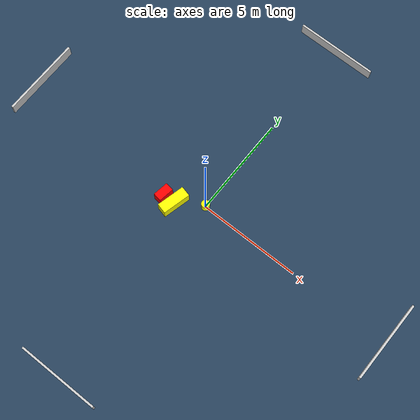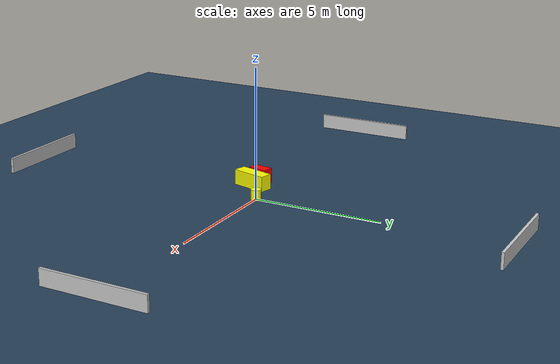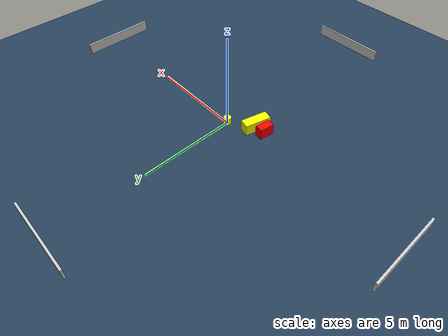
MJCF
<?xml version="1.0" ?>
<mujoco model="generated_environment">
  <option timestep="0.01" integrator="RK4" cone="elliptic"/>
  <default>
    <geom density="1"/>
  </default>
  <asset>
    <texture builtin="gradient" height="3072" name="skybox" rgb1="0.3 0.5 0.7" rgb2="0 0 0" type="skybox" width="512"/>
    <texture builtin="checker" height="300" name="groundplane" rgb1="0.2 0.3 0.4" rgb2="0.1 0.2 0.3" type="2d" width="300"/>
    <material name="groundplane" reflectance="0.2" texrepeat="5 5" texture="groundplane"/>
  </asset>
  <worldbody>
    <light dir="0 0 -1" directional="true" pos="0 0 1.5"/>
    <geom condim="3" friction="0.5 0.005 0.001" material="groundplane" name="floor" pos="0 0 0" size="0 0 0.05" type="plane"/>
    <body name="walls">
      <geom name="wall_1" condim="4" pos="-10.0 0.0 0.3" rgba="0.800000011920929 0.800000011920929 0.800000011920929 1.0" size="0.05 2.0 0.3" type="box"/>
      <geom name="wall_2" condim="4" pos="10.0 0.0 0.3" rgba="0.800000011920929 0.800000011920929 0.800000011920929 1.0" size="0.05 2.0 0.3" type="box"/>
      <geom name="wall_3" condim="4" pos="0.0 -10.0 0.3" rgba="0.800000011920929 0.800000011920929 0.800000011920929 1.0" size="2.0 0.05 0.3" type="box"/>
      <geom name="wall_4" condim="4" pos="0.0 10.0 0.3" rgba="0.800000011920929 0.800000011920929 0.800000011920929 1.0" size="2.0 0.05 0.3" type="box"/>
    </body>
    <body name="robot">
      <joint name="joint_x" type="slide" pos="0 0 0" axis="1 0 0"/>
      <joint name="joint_y" type="slide" pos="0 0 0" axis="0 1 0"/>
      <geom name="robot" type="cylinder" pos="0.0 0.0 0.2" size="0.2 0.2 0.0" mass="5.0" friction="1.0 0.005 0.0001" condim="4" rgba="1.0 1.0 0.0 1.0"/>
    </body>
    <body name="obstacle_1_movable">
      <geom name="obstacle_1_movable" condim="4" pos="-1.2045129023617955 -0.8064740737345367 0.3" euler="0 0 256.00804057629205" friction="0.0 0.005 0.001" rgba="1.0 1.0 0.0 1.0" size="0.6913258569582381 0.25239374783666035 0.3" type="box" mass="0.1"/>
      <joint type="free"/>
    </body>
    <body name="obstacle_2_static">
      <geom name="obstacle_2_static" condim="4" pos="-1.8066203998361208 -0.8000880757093113 0.3" euler="0 0 351.40992390563616" friction="0.0 0.005 0.001" rgba="1.0 0.0 0.0 1.0" size="0.21059105230766917 0.37939828988472935 0.3" type="box"/>
    </body>
  </worldbody>
  <actuator>
    <motor name="actuator_x" joint="joint_x" gear="1" ctrlrange="-1 1"/>
    <motor name="actuator_y" joint="joint_y" gear="1" ctrlrange="-1 1"/>
  </actuator>
</mujoco>
